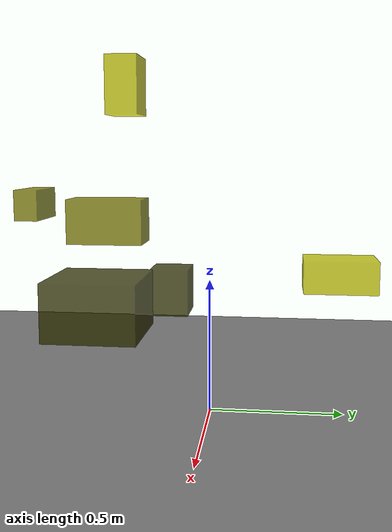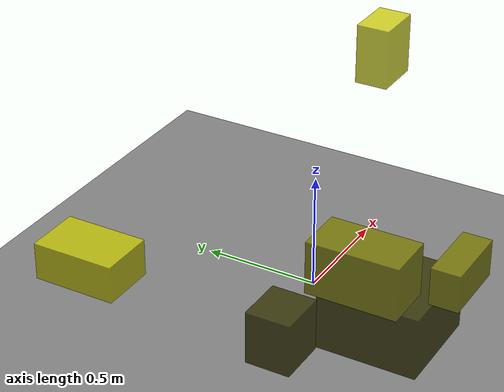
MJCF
<?xml version="1.0"?>
<mujoco model="obstacle_scene">
  <compiler angle="radian" coordinate="local"/>
  <option timestep="0.001" gravity="0 0 -9.81"/>

  <asset>
    <material name="obstacle_mat" rgba="0.8 0.8 0.0 0.8"/>
    <material name="ground_mat" rgba="0.5 0.5 0.5 1"/>
  </asset>

  <worldbody>
    <!-- Ground plane -->
    <geom name="ground" type="plane" size="3 3 0.1" material="ground_mat"/>

    <!-- Obstacles -->
    <body name="obstacle_0" pos="-0.408398 -0.534165 0.301440">
      <geom name="obs_0" type="box" size="0.200700 0.205317 0.128943" rgba="0.2 0.2 0.0 0.8"/>
    </body>
    <body name="obstacle_1" pos="-0.701118 -0.558429 0.647008">
      <geom name="obs_1" type="box" size="0.098890 0.178701 0.105358" rgba="0.5 0.5 0.0 0.8"/>
    </body>
    <body name="obstacle_2" pos="-0.805126 0.544918 0.390302">
      <geom name="obs_2" type="box" size="0.116059 0.173262 0.077991" rgba="0.8 0.8 0.0 0.8"/>
    </body>
    <body name="obstacle_3" pos="-0.754335 -0.261876 0.308850">
      <geom name="obs_3" type="box" size="0.101595 0.091803 0.109622" rgba="0.2 0.2 0.0 0.8"/>
    </body>
    <body name="obstacle_4" pos="-0.669114 -0.905623 0.727645">
      <geom name="obs_4" type="box" size="0.133914 0.054321 0.071242" rgba="0.5 0.5 0.0 0.8"/>
    </body>
    <body name="obstacle_5" pos="-0.168319 -0.347659 1.227015">
      <geom name="obs_5" type="box" size="0.090952 0.061933 0.112456" rgba="0.8 0.8 0.0 0.8"/>
    </body>
  </worldbody>
</mujoco>
